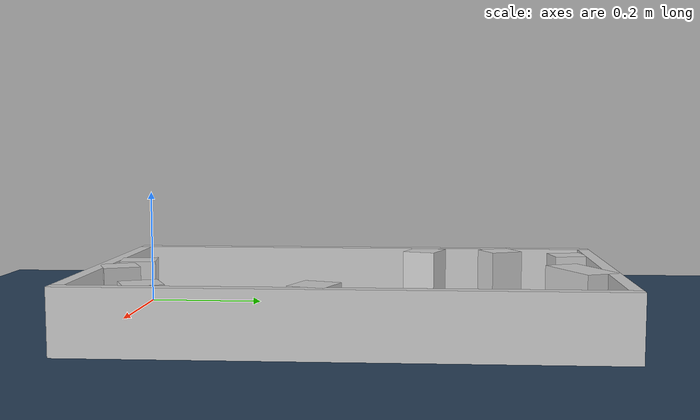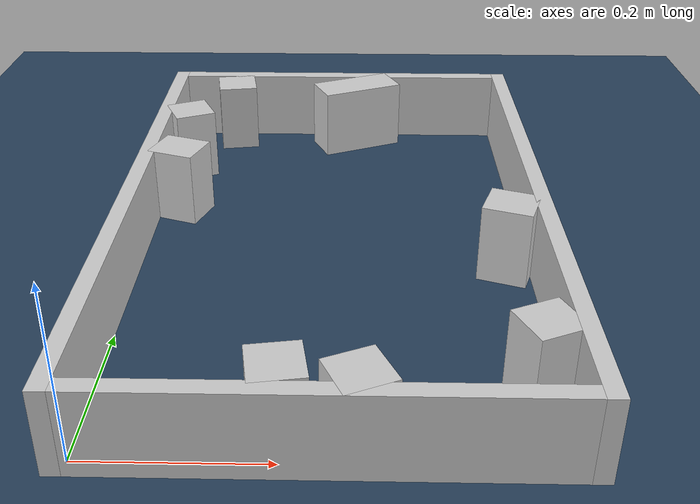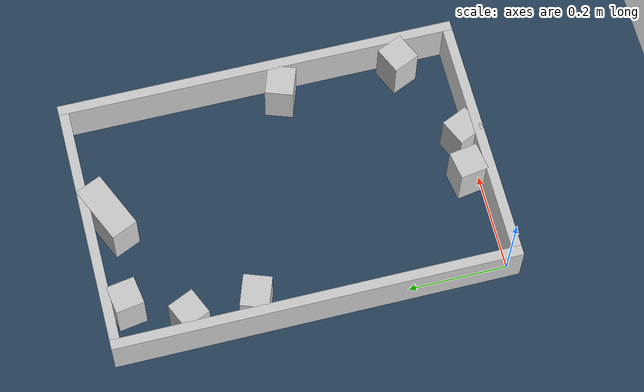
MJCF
<?xml version="1.0" ?>
<mujoco model="generated_real_template">
  <compiler angle="degree"/>
  <option timestep="0.002" integrator="implicitfast" iterations="100" cone="elliptic"/>
  <default>
    <geom density="1"/>
  </default>
  <asset>
    <texture builtin="gradient" height="3072" rgb1="0.3 0.5 0.7" rgb2="0 0 0" type="skybox" width="512"/>
    <texture builtin="checker" height="300" mark="edge" markrgb="0.8 0.8 0.8" name="groundplane" rgb1="0.2 0.3 0.4" rgb2="0.1 0.2 0.3" type="2d" width="300"/>
    <material name="groundplane" reflectance="0.2" texrepeat="5 5" texture="groundplane" texuniform="true"/>
  </asset>
  <worldbody>
    <light dir="0 0 -1" directional="true" pos="0 0 1.5"/>
    <geom name="floor" type="plane" condim="4" friction="0.5 0.005 0.001" material="groundplane" size="0 0 0.05"/>
    <body name="walls">
      <geom name="wall_boundary_left" type="box" condim="4" friction="1.0 0.005 0.0001" rgba="0.8 0.8 0.8 1" pos="-0.010000 0.387500 0.050000" euler="0 0 0.000000" size="0.010000 0.407500 0.050000"/>
      <geom name="wall_boundary_right" type="box" condim="4" friction="1.0 0.005 0.0001" rgba="0.8 0.8 0.8 1" pos="0.500000 0.387500 0.050000" euler="0 0 0.000000" size="0.010000 0.407500 0.050000"/>
      <geom name="wall_boundary_bottom" type="box" condim="4" friction="1.0 0.005 0.0001" rgba="0.8 0.8 0.8 1" pos="0.245000 -0.010000 0.050000" euler="0 0 0.000000" size="0.245000 0.010000 0.050000"/>
      <geom name="wall_boundary_top" type="box" condim="4" friction="1.0 0.005 0.0001" rgba="0.8 0.8 0.8 1" pos="0.245000 0.785000 0.050000" euler="0 0 0.000000" size="0.245000 0.010000 0.050000"/>
      <geom name="wall_inner_1_1" type="box" condim="4" friction="1.0 0.005 0.0001" rgba="0.8 0.8 0.8 1" pos="0.030648 0.500983 0.050000" euler="0 0 -19.693161" size="0.032552 0.028500 0.050000"/>
      <geom name="wall_inner_1_2" type="box" condim="4" friction="1.0 0.005 0.0001" rgba="0.8 0.8 0.8 1" pos="0.460877 0.346996 0.050000" euler="0 0 -19.693161" size="0.030932 0.028500 0.050000"/>
      <geom name="wall_inner_2_1" type="box" condim="4" friction="1.0 0.005 0.0001" rgba="0.8 0.8 0.8 1" pos="0.083168 0.746657 0.050000" euler="0 0 -80.933090" size="0.028701 0.028500 0.050000"/>
      <geom name="wall_inner_2_2" type="box" condim="4" friction="1.0 0.005 0.0001" rgba="0.8 0.8 0.8 1" pos="0.197774 0.028494 0.050000" euler="0 0 -80.933090" size="0.028854 0.028500 0.050000"/>
      <geom name="wall_inner_3_1" type="box" condim="4" friction="1.0 0.005 0.0001" rgba="0.8 0.8 0.8 1" pos="0.463418 0.101586 0.050000" euler="0 0 -155.935247" size="0.029112 0.028500 0.050000"/>
      <geom name="wall_inner_3_2" type="box" condim="4" friction="1.0 0.005 0.0001" rgba="0.8 0.8 0.8 1" pos="0.275756 0.017779 0.050000" euler="0 0 -155.935247" size="0.028829 0.028500 0.050000"/>
      <geom name="wall_inner_4_1" type="box" condim="4" friction="1.0 0.005 0.0001" rgba="0.8 0.8 0.8 1" pos="0.026225 0.634463 0.050000" euler="0 0 23.960034" size="0.028698 0.028500 0.050000"/>
      <geom name="wall_inner_4_2" type="box" condim="4" friction="1.0 0.005 0.0001" rgba="0.8 0.8 0.8 1" pos="0.272543 0.743925 0.050000" euler="0 0 23.960034" size="0.061636 0.028500 0.050000"/>
    </body>
  </worldbody>
</mujoco>
